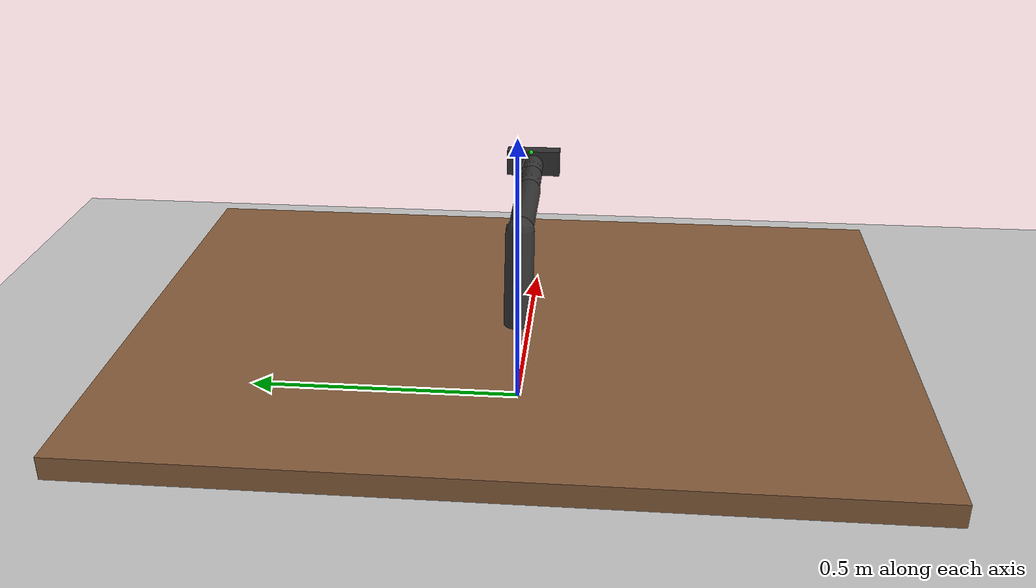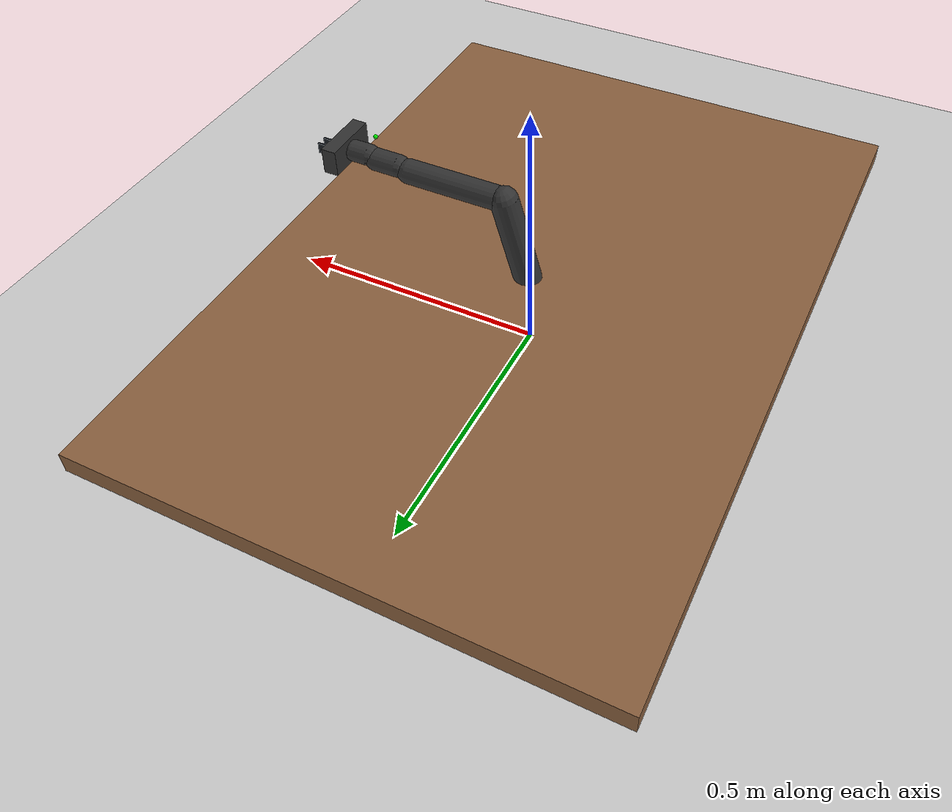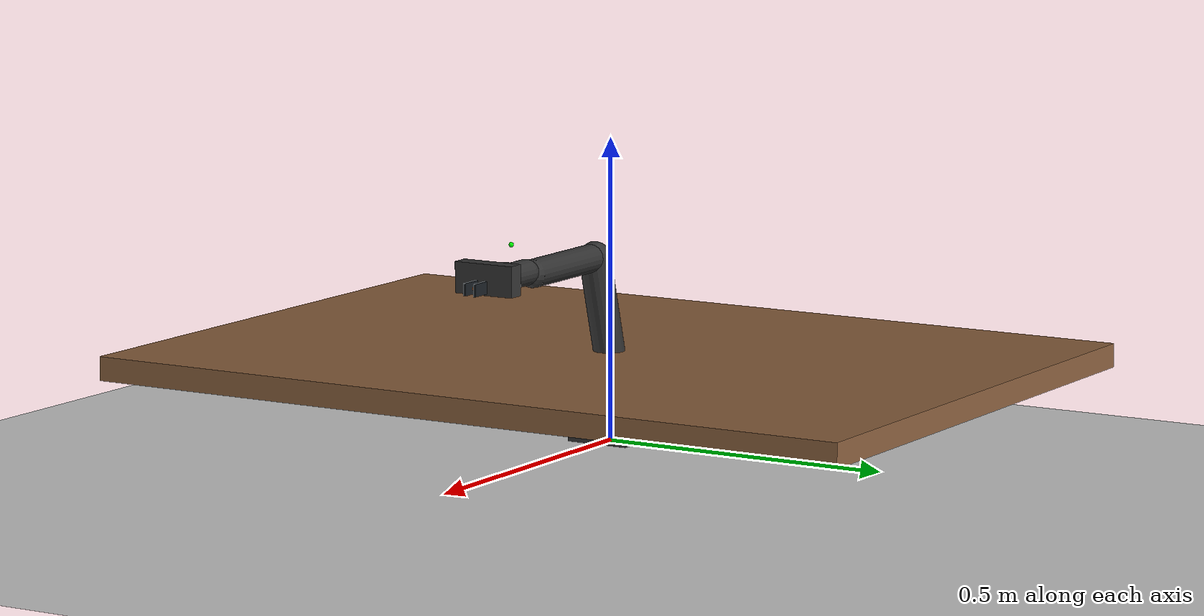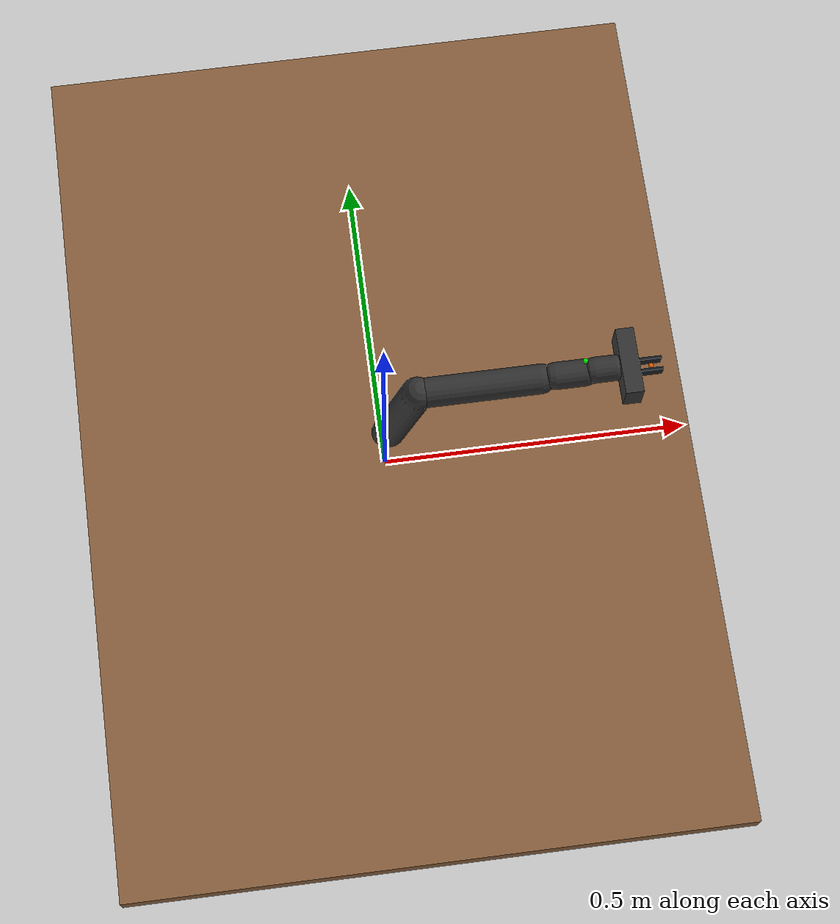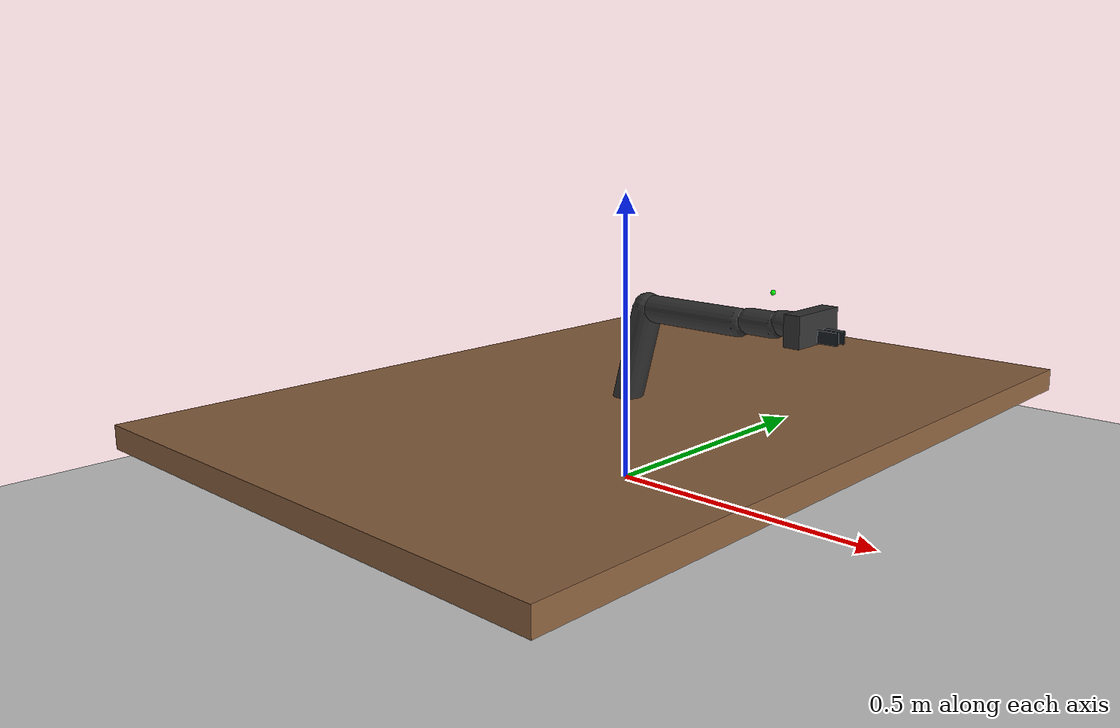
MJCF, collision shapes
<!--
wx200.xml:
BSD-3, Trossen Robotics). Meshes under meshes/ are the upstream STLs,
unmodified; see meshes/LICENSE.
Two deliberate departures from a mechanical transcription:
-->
<mujoco model="wx200_scene">
  <option>
    <flag multiccd="disable" nativeccd="disable"/>
  </option>

  <include file="wx200.xml"/>

  <asset>
    <texture name="mjwarp_skybox" type="skybox" builtin="gradient"
             rgb1="0.16 0.25 0.34" rgb2="0.012 0.018 0.030"
             width="256" height="1536"/>
    <texture name="mjwarp_desk_tex_0" type="2d" builtin="checker"
             rgb1="0.46 0.31 0.20" rgb2="0.63 0.45 0.29" width="128" height="128"/>
    <texture name="mjwarp_desk_tex_1" type="2d" builtin="checker"
             rgb1="0.25 0.25 0.25" rgb2="0.48 0.48 0.48" width="128" height="128"/>
    <texture name="mjwarp_desk_tex_2" type="2d" builtin="checker"
             rgb1="0.12 0.29 0.38" rgb2="0.24 0.48 0.56" width="128" height="128"/>
    <texture name="mjwarp_desk_tex_3" type="2d" builtin="checker"
             rgb1="0.47 0.44 0.34" rgb2="0.70 0.66 0.51" width="128" height="128"/>
    <texture name="mjwarp_desk_tex_4" type="2d" builtin="checker"
             rgb1="0.31 0.16 0.12" rgb2="0.55 0.28 0.20" width="128" height="128"/>
    <texture name="mjwarp_desk_tex_5" type="2d" builtin="checker"
             rgb1="0.22 0.33 0.20" rgb2="0.42 0.55 0.34" width="128" height="128"/>
    <texture name="mjwarp_desk_tex_6" type="2d" builtin="checker"
             rgb1="0.33 0.24 0.38" rgb2="0.54 0.42 0.60" width="128" height="128"/>
    <material name="mjwarp_desk_mat_0" texture="mjwarp_desk_tex_0" texrepeat="12 12" texuniform="true"/>
    <material name="mjwarp_desk_mat_1" texture="mjwarp_desk_tex_1" texrepeat="12 12" texuniform="true"/>
    <material name="mjwarp_desk_mat_2" texture="mjwarp_desk_tex_2" texrepeat="12 12" texuniform="true"/>
    <material name="mjwarp_desk_mat_3" texture="mjwarp_desk_tex_3" texrepeat="12 12" texuniform="true"/>
    <material name="mjwarp_desk_mat_4" texture="mjwarp_desk_tex_4" texrepeat="12 12" texuniform="true"/>
    <material name="mjwarp_desk_mat_5" texture="mjwarp_desk_tex_5" texrepeat="12 12" texuniform="true"/>
    <material name="mjwarp_desk_mat_6" texture="mjwarp_desk_tex_6" texrepeat="12 12" texuniform="true"/>
  </asset>

  <worldbody>
    <light name="side_light" pos="1.0 -1.0 2.0" dir="-1 1 -1"
           ambient="0.04 0.04 0.04" diffuse="0.42 0.42 0.42"
           specular="0.06 0.06 0.06" directional="true" castshadow="false"/>
    <light name="fill_light" pos="-1.0 -0.8 1.7" dir="1 0.8 -1"
           ambient="0.05 0.05 0.05" diffuse="0.32 0.32 0.32"
           specular="0.03 0.03 0.03" directional="true" castshadow="false"/>

    <camera name="overview" mode="fixed" pos="-0.45 -0.45 0.55"
            xyaxes="0.7432 -0.6689 0  0.2716 0.3018 0.9103" fovy="55"/>

    <geom name="floor" type="plane" size="5 5 0.1" pos="0 0 -0.1"
          rgba="0.8 0.8 0.8 1"/>

    <!-- Textured render surface; MJWarp samples plane UVs but not box UVs. -->
    <geom name="mjwarp_desk_surface_visual" type="plane" pos="0 0 0.1502"
          size="0.48 0.68 0.001" material="mjwarp_desk_mat_0"
          contype="0" conaffinity="0" group="2"/>
    <!-- Physical desk top. contype 4 pairs with the arm's conaffinity 1. -->
    <geom name="mjwarp_desk_surface" type="box" pos="0 0 0.13"
          size="0.48 0.68 0.02" material="mjwarp_desk_mat_0"
          contype="4" conaffinity="1" condim="3" group="3"
          friction="0.9 0.01 0.001" solref="0.008 1"
          solimp="0.90 0.95 0.001" margin="0.001"/>
  </worldbody>

</mujoco>

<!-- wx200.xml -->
<mujoco model="widowx200">
  <compiler autolimits="true" angle="radian" meshdir="meshes"/>

  <default>
    <site type="sphere" rgba="1 0 0 1" size="0.005"/>
    <default class="wx200_visual">
      <geom contype="0" conaffinity="0" group="1" type="mesh"
            material="interbotix_black"/>
    </default>
    <default class="wx200_collision">
      <geom contype="8" conaffinity="1" group="3" condim="3"
            friction="0.8 0.01 0.001" solref="0.008 1"
            solimp="0.90 0.95 0.001" margin="0.001"
            rgba="0.2 0.2 0.2 1"/>
    </default>
    <default class="finger_pad_collision">
      <geom contype="2" conaffinity="1" group="3" condim="4"
            friction="3.0 0.08 0.003" solref="0.005 1"
            solimp="0.95 0.99 0.001" margin="0.001"
            rgba="0.10 0.12 0.14 1"/>
    </default>
    <default class="wx200_joint">
      <joint type="hinge" limited="true" damping="1.2" armature="0.02"
             frictionloss="0.05"/>
    </default>
  </default>

  <visual>
    <headlight ambient=".16 .16 .16" diffuse=".62 .62 .62" specular=".08 .08 .08"/>
    <rgba haze=".035 .050 .075 1"/>
    <map znear="0.0002" zfar="2.0"/>
  </visual>

  <asset>
    <material name="interbotix_black" rgba="0.15 0.15 0.15 1"
              specular="0.30" shininess="0.35" reflectance="0.04"/>
    <material name="interbotix_grey" rgba="0.55 0.57 0.60 1"
              specular="0.35" shininess="0.40" reflectance="0.06"/>
    <mesh name="wx200_base" file="wx200_1_base.stl" scale="0.001 0.001 0.001"/>
    <mesh name="wx200_shoulder" file="wx200_2_shoulder.stl" scale="0.001 0.001 0.001"/>
    <mesh name="wx200_upper_arm" file="wx200_3_upper_arm.stl" scale="0.001 0.001 0.001"/>
    <mesh name="wx200_forearm" file="wx200_4_forearm.stl" scale="0.001 0.001 0.001"/>
    <mesh name="wx200_wrist" file="wx200_5_wrist.stl" scale="0.001 0.001 0.001"/>
    <mesh name="wx200_gripper" file="wx200_6_gripper.stl" scale="0.001 0.001 0.001"/>
    <mesh name="wx200_gripper_prop" file="wx200_7_gripper_prop.stl" scale="0.001 0.001 0.001"/>
    <mesh name="wx200_gripper_bar" file="wx200_8_gripper_bar.stl" scale="0.001 0.001 0.001"/>
    <mesh name="wx200_gripper_finger" file="wx200_9_gripper_finger.stl" scale="0.001 0.001 0.001"/>
  </asset>

  <worldbody>
    <!--
      The mount pose is set by the scene wrapper, not here, so this file stays
      a pure robot description. `wx200_mount` is the body a scene repositions.
    -->
    <body name="wx200_mount" pos="0 0 0">
      <body name="base_link" pos="0 0 0">
        <inertial pos="-0.0381747 0.000647863 0.0193458" mass="0.395887"
                  diaginertia="0.0010650 0.0003332 0.0012080"/>
        <geom class="wx200_visual" mesh="wx200_base" euler="0 0 1.5707963"/>
        <geom class="wx200_collision" type="box" size="0.055 0.055 0.036"
              pos="-0.01 0 0.036"/>

        <body name="shoulder_link" pos="0 0 0.072">
          <inertial pos="0.0000223 0.0000415 0.0066287" mass="0.072587"
                    diaginertia="0.0000247 0.0000247 0.0000353"/>
          <joint name="waist" class="wx200_joint" axis="0 0 1"
                 range="-3.1405927 3.1405927"/>
          <geom class="wx200_visual" mesh="wx200_shoulder"
                pos="0 0 -0.003" euler="0 0 1.5707963"/>
          <geom class="wx200_collision" type="cylinder" size="0.038 0.024"
                pos="0 0 0.020"/>

          <body name="upper_arm_link" pos="0 0 0.03865">
            <inertial pos="0.0119707 -0.000118 0.139429" mass="0.276300"
                      diaginertia="0.0021740 0.0021450 0.0002540"/>
            <joint name="shoulder" class="wx200_joint" axis="0 1 0"
                   range="-1.8849556 1.9722221"/>
            <geom class="wx200_visual" mesh="wx200_upper_arm" euler="0 0 1.5707963"/>
            <!-- The upper arm is skewed: (0.05, 0, 0.2) shoulder to elbow. -->
            <geom class="wx200_collision" type="capsule" size="0.026"
                  fromto="0 0 0.02  0.05 0 0.20"/>

            <body name="forearm_link" pos="0.05 0 0.2">
              <inertial pos="0.121192 -0.000124 0" mass="0.239400"
                        diaginertia="0.0001590 0.0014300 0.0014400"/>
              <joint name="elbow" class="wx200_joint" axis="0 1 0"
                     range="-1.8849556 1.6231562"/>
              <geom class="wx200_visual" mesh="wx200_forearm" euler="0 0 1.5707963"/>
              <geom class="wx200_collision" type="capsule" size="0.023"
                    fromto="0.012 0 0  0.19 0 0"/>

              <body name="wrist_link" pos="0.2 0 0">
                <inertial pos="0.04236 -0.0000107 0.0105770" mass="0.084600"
                          diaginertia="0.0000265 0.0000282 0.0000285"/>
                <joint name="wrist_angle" class="wx200_joint" axis="0 1 0"
                       range="-1.7453293 2.1467550"/>
                <geom class="wx200_visual" mesh="wx200_wrist" euler="0 0 1.5707963"/>
                <geom class="wx200_collision" type="capsule" size="0.021"
                      fromto="0.010 0 0.005  0.058 0 0.005"/>

                <body name="gripper_link" pos="0.065 0 0">
                  <inertial pos="0.021631 0 0.01141" mass="0.072300"
                            diaginertia="0.0000216 0.0000273 0.0000353"/>
                  <joint name="wrist_rotate" class="wx200_joint" axis="1 0 0"
                         range="-3.1405927 3.1405927"/>
                  <geom class="wx200_visual" mesh="wx200_gripper"
                        pos="-0.02 0 0" euler="0 0 1.5707963"/>
                  <geom class="wx200_visual" mesh="wx200_gripper_prop"
                        pos="-0.0685 0 0" euler="0 0 1.5707963"
                        material="interbotix_grey"/>
                  <geom class="wx200_collision" type="capsule" size="0.020"
                        fromto="0.005 0 0.010  0.038 0 0.010"/>

                  <!-- ee_arm_link in the URDF; carries the gripper bar. -->
                  <body name="gripper_bar_link" pos="0.043 0 0">
                    <inertial pos="0.009687 0 0.004962" mass="0.034199"
                              diaginertia="0.0000074 0.0000284 0.0000286"/>
                    <geom class="wx200_visual" mesh="wx200_gripper_bar"
                          pos="-0.063 0 0" euler="0 0 1.5707963"/>
                    <!-- Sized from the compiled gripper-bar mesh bounds. -->
                    <geom class="wx200_collision" type="box"
                          size="0.014 0.052 0.025" pos="0.014 0 0.011"/>

                    <body name="wrist_camera_body" pos="-0.055 0 0.055"
                          euler="0 0 0">
                      <site name="wrist_camera_marker" type="sphere"
                            size="0.004" rgba="0 1 0 1"/>
                      <camera name="ee_camera" mode="fixed" fovy="60"
                              euler="0 -1.0908000 -1.5707963"/>
                    </body>

                    <body name="fingers_link" pos="0.023 0 0">
                      <inertial pos="0 0 0" mass="0.001"
                                diaginertia="1e-6 1e-6 1e-6"/>

                      <body name="ee_base" pos="0.027575 0 0">
                        <inertial pos="0 0 0" mass="1e-6"
                                  diaginertia="1e-9 1e-9 1e-9"/>
                        <site name="ee_grasp_site" pos="0 0 0"
                              size="0.004" rgba="1 0.4 0 1"/>
                      </body>

                      <body name="left_finger_link" pos="0 0 0">
                        <inertial pos="0 0.0138160 0" mass="0.016246"
                                  diaginertia="0.0000047 0.0000016 0.0000037"/>
                        <joint name="left_finger" type="slide" axis="0 1 0"
                               limited="true" range="0.015 0.037" damping="3.0"
                               armature="0.005"/>
                        <geom class="wx200_visual" mesh="wx200_gripper_finger"
                              pos="0 0.005 0" euler="3.1415927 3.1415927 0"/>
                        <geom name="left_finger_pad" class="finger_pad_collision"
                              type="box" size="0.017 0.002 0.010"
                              pos="0.027 -0.009 0"/>
                      </body>

                      <body name="right_finger_link" pos="0 0 0">
                        <inertial pos="0 -0.0138160 0" mass="0.016246"
                                  diaginertia="0.0000047 0.0000016 0.0000037"/>
                        <joint name="right_finger" type="slide" axis="0 -1 0"
                               limited="true" range="0.015 0.037" damping="3.0"
                               armature="0.005"/>
                        <geom class="wx200_visual" mesh="wx200_gripper_finger"
                              pos="0 -0.005 0" euler="0 3.1415927 0"/>
                        <geom name="right_finger_pad" class="finger_pad_collision"
                              type="box" size="0.017 0.002 0.010"
                              pos="0.027 0.009 0"/>
                      </body>
                    </body>
                  </body>
                </body>
              </body>
            </body>
          </body>
        </body>
      </body>
    </body>
  </worldbody>

  <equality>
    <joint joint1="left_finger" joint2="right_finger" polycoef="0 1 0 0 0"/>
  </equality>

  <actuator>
    <position name="waist_pos" joint="waist" kp="120" kv="12"
              ctrlrange="-3.1405927 3.1405927"/>
    <position name="shoulder_pos" joint="shoulder" kp="300" kv="30"
              ctrlrange="-1.8849556 1.9722221"/>
    <position name="elbow_pos" joint="elbow" kp="220" kv="22"
              ctrlrange="-1.8849556 1.6231562"/>
    <position name="wrist_angle_pos" joint="wrist_angle" kp="90" kv="9"
              ctrlrange="-1.7453293 2.1467550"/>
    <position name="wrist_rotate_pos" joint="wrist_rotate" kp="35" kv="3.5"
              ctrlrange="-3.1405927 3.1405927"/>
    <position name="act_gripper" joint="left_finger" kp="200" kv="2.0"
              ctrlrange="0.015 0.037"/>
  </actuator>

  <sensor>
    <framepos objtype="site" objname="ee_grasp_site"/>
    <framequat objtype="site" objname="ee_grasp_site"/>
    <framepos objtype="camera" objname="ee_camera"/>
    <framequat objtype="camera" objname="ee_camera"/>
  </sensor>
</mujoco>
